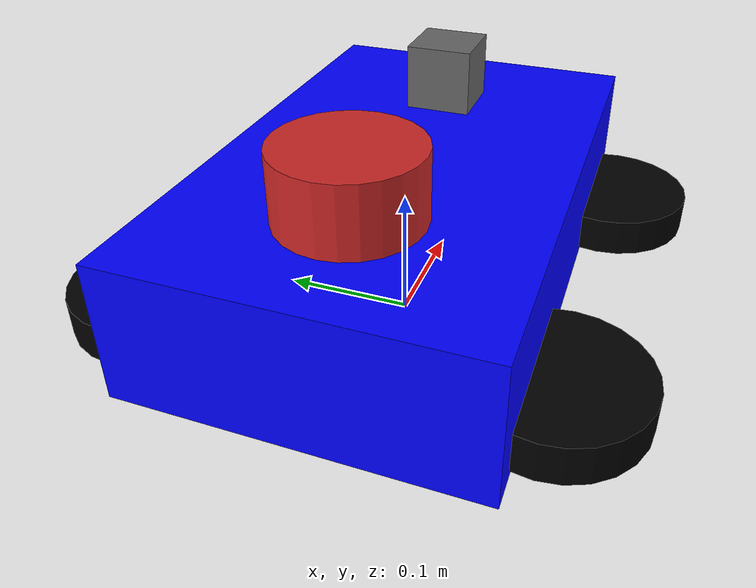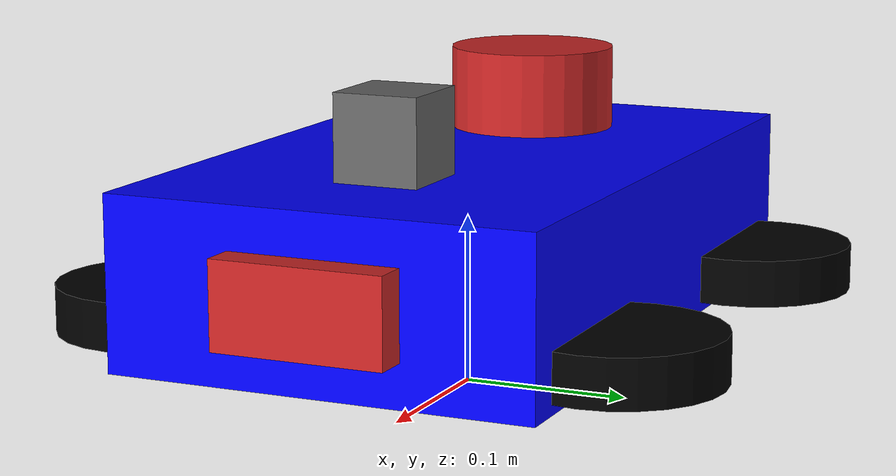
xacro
<?xml version="1.0"?>
<!-- http://wiki.ros.org/urdf/XML/link  -->
<robot xmlns:xacro="http://www.ros.org/wiki/xacro" name="lidar_detection">

    <!-- Define constants -->

    <xacro:property name="base_mass" value="1.0"/>
    <xacro:property name="base_length" value="0.4"/>
    <xacro:property name="base_width" value="0.25"/>
    <xacro:property name="base_height" value="0.1"/>
    <xacro:property name="base_wheel_distance" value="0.02"/>

    <xacro:property name="wheel_mass" value="0.1"/>
    <xacro:property name="wheel_separation" value="${base_width + wheel_length}"/>
    <xacro:property name="wheel_radius" value="0.06"/>
    <xacro:property name="wheel_length" value="0.028"/>

    <xacro:property name="laser_mass" value="0.1"/>
    <xacro:property name="laser_radius" value="0.05"/>
    <xacro:property name="laser_length" value="0.05"/>
    <xacro:property name="laser_distance_z" value="${base_height/2 + laser_length/2}"/>
    <xacro:property name="laser_distance_x" value="-0.1"/>

    <xacro:property name="camera_size_x" value="0.02"/>
    <xacro:property name="camera_size_y" value="0.1"/>
    <xacro:property name="camera_size_z" value="0.05"/>
    <xacro:property name="camera_distance_x" value="${base_length/2 + camera_size_x/2}"/>
    <xacro:property name="camera_distance_y" value="0"/>
    <xacro:property name="camera_distance_z" value="0"/>

    <xacro:property name="imu_size_x" value="0.05"/>
    <xacro:property name="imu_size_y" value="0.05"/>
    <xacro:property name="imu_size_z" value="0.05"/>
    <xacro:property name="imu_distance_x" value="0.1"/>
    <xacro:property name="imu_distance_y" value="0"/>
    <xacro:property name="imu_distance_z" value="${base_height/2 + imu_size_z/2}"/>

    <!-- Include the common gazebo macros -->
    <xacro:include filename="$(find lidar_detection)/urdf/common_gazebo.xacro" />
    <xacro:include filename="$(find lidar_detection)/urdf/inertial_macro.xacro" />

    <!-- This is the base of the robot -->
    <link name="base_footprint"/>

    <!-- This is the body of the robot -->
    <link name="body_link">
        <xacro:inertial_box mass="${base_mass}" x="${base_length}" y="${base_width}" z="${base_height}">
            <origin xyz="0 0 0" rpy="0 0 0"/>
        </xacro:inertial_box>
        <visual>
            <origin rpy="0 0 0" xyz="0 0 0"/>
            <geometry>
                <box size="${base_length} ${base_width} ${base_height}" />
            </geometry>

            <material name="blue">
                <color rgba="0 0 1 1"/>
            </material>
        </visual>
        <collision>
            <origin rpy="0 0 0" xyz="0 0 0"/>
            <geometry>
                <box size="${base_length} ${base_width} ${base_height}" />
            </geometry>
        </collision>
    </link>

    <joint name="base_joint" type="fixed">
        <origin xyz="0.0 0.0 ${base_height/2 - base_wheel_distance + wheel_radius}" rpy="0.0 0.0 0.0"/>
        <parent link="base_footprint"/>
        <child link="body_link"/>
        <axis xyz="0.0 0.0 0.0"/>
        <limit lower="0.0" upper="0.0" effort="0.0" velocity="0.0"/>
    </joint>

    <!-- Define the wheel macro -->
    <xacro:macro name="wheel" params="name x y z">
        <joint name="${name}_joint" type="continuous" >
            <parent link="body_link"/>
            <child  link="${name}_link" />
            <origin xyz="${x} ${y} ${z}" rpy="0 0 0" />
            <axis xyz="0 1 0"/>
        </joint>
        <link name="${name}_link">
            <xacro:inertial_cylinder mass="${wheel_mass}" length="${wheel_length}" radius="${wheel_radius}">
                <origin xyz="0 0 0" rpy="0 0 0"/>
            </xacro:inertial_cylinder>
            <visual>
                <origin rpy="${pi} 0 0" xyz="0 0 0"/>
                <geometry>
                    <cylinder length="${wheel_length}" radius="${wheel_radius}"/>
                </geometry>

                <material name="black">
                    <color rgba="0 0 0 1"/>
                </material>
            </visual>
            <collision>
                <origin rpy="${pi} 0 0" xyz="0 0 0"/>
                <geometry>
                    <cylinder length="${wheel_length}" radius="${wheel_radius}"/>
                </geometry>
            </collision>
        </link>
    </xacro:macro>

    <xacro:wheel name="rear_right" x="${-base_length * 0.3}" y="${-base_width/2 - wheel_length/2}" z="${base_wheel_distance - base_height/2}"/>
    <xacro:wheel name="rear_left"  x="${-base_length * 0.3}" y="${base_width/2 + wheel_length/2}" z="${base_wheel_distance - base_height/2}"/>
    <xacro:wheel name="front_right" x="${base_length * 0.3}" y="${-base_width/2 - wheel_length/2}" z="${base_wheel_distance - base_height/2}"/>
    <xacro:wheel name="front_left" x="${base_length * 0.3}" y="${base_width/2 + wheel_length/2}" z="${base_wheel_distance - base_height/2}"/>

    <!-- Include the skid steering drive plugin -->
    <xacro:include filename="$(find lidar_detection)/urdf/four_wheel_drive_gazebo.xacro" />

    <!-- Include the lidar -->
    <xacro:include filename="$(find lidar_detection)/urdf/lidar2d.xacro" />

    <!-- Include the camera -->
    <xacro:include filename="$(find lidar_detection)/urdf/camera.xacro" />

    <!-- Include the IMU -->
    <xacro:include filename="$(find lidar_detection)/urdf/bno055_imu.xacro" />
    <xacro:add_bno055_imu parent_link="body_link"/>

</robot>

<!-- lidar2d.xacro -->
<robot xmlns:xacro="http://www.ros.org/wiki/xacro" >

    <joint name="lidar_joint" type="fixed">
        <parent link="body_link"/>
        <child link="lidar_link"/>
        <origin xyz="${laser_distance_x} 0 ${laser_distance_z}" rpy="0 0 0"/>
    </joint>

    <link name="lidar_link">
        <visual>
            <geometry>
                <cylinder radius="${laser_radius}" length="${laser_length}"/>
            </geometry>
            <material name="red"/>
        </visual>
        <collision>
            <geometry>
                <cylinder radius="${laser_radius}" length="${laser_length}"/>
            </geometry>
        </collision>
        <xacro:inertial_cylinder mass="${laser_mass}" radius="${laser_radius}" length="${laser_length}">
            <origin xyz="0 0 0" rpy="0 0 0"/>
        </xacro:inertial_cylinder>
    </link>

    <gazebo reference="lidar_link">
        <material>Gazebo/Red</material>

        <sensor name="laser" type="ray">
            <pose> 0 0 0 0 0 0 </pose>
            <visualize>true</visualize>
            <update_rate>10</update_rate>
            <ray>
                <scan>
                    <horizontal>
                        <samples>360</samples>
                        <min_angle>0</min_angle>
                        <max_angle>6.28</max_angle>
                    </horizontal>
                </scan>
                <range>
                    <min>0.22</min>
                    <max>6</max>
                </range>
            </ray>
            <plugin name="laser_controller" filename="libgazebo_ros_ray_sensor.so">
                <ros>
                    <argument>~/out:=scan</argument>
                </ros>
                <output_type>sensor_msgs/LaserScan</output_type>
                <frameName>lidar_link</frameName>
            </plugin>
        </sensor>
    </gazebo>

</robot>

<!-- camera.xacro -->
<robot xmlns:xacro="http://www.ros.org/wiki/xacro">

  <!-- Joint: camera mounted in front of body -->
  <joint name="camera_joint" type="fixed">
    <parent link="body_link"/>
    <child link="camera_link"/>
    <origin xyz="${camera_distance_x} ${camera_distance_y} ${camera_distance_z}" rpy="0 0 0"/> <!-- Adjust position as needed -->
  </joint>

  <!-- Link: camera body -->
  <link name="camera_link">
    <visual>
      <geometry>
        <box size="${camera_size_x} ${camera_size_y} ${camera_size_z}"/>
      </geometry>
      <material name="red"/>
    </visual>
    <collision>
      <geometry>
        <box size="${camera_size_x} ${camera_size_y} ${camera_size_z}"/>
      </geometry>
    </collision>
    <inertial>
      <mass value="0.1"/>
      <origin xyz="0 0 0" rpy="0 0 0"/>
      <inertia ixx="0.0001" ixy="0.0" ixz="0.0"
               iyy="0.0001" iyz="0.0"
               izz="0.0001"/>
    </inertial>
  </link>

  <!-- Gazebo sensor plugin: camera -->
  <gazebo reference="camera_link">
    <sensor name="camera_sensor" type="camera">
      <pose>0 0 0 0 0 0</pose>
      <visualize>true</visualize>
      <update_rate>30</update_rate>
      <camera>
        <horizontal_fov>1.047</horizontal_fov> <!-- ~60 degrees -->
        <image>
          <width>640</width>
          <height>480</height>
          <format>R8G8B8</format>
        </image>
        <clip>
          <near>0.1</near>
          <far>100.0</far>
        </clip>
      </camera>
      <plugin name="camera_controller" filename="libgazebo_ros_camera.so">
        <camera_name>camera</camera_name>
        <image_topic_name>image_raw</image_topic_name>
        <camera_info_topic_name>camera_info</camera_info_topic_name>
        <frame_name>camera_link</frame_name>
      </plugin>
    </sensor>
  </gazebo>

</robot>

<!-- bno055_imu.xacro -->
<robot xmlns:xacro="http://www.ros.org/wiki/xacro">

  <xacro:macro name="add_bno055_imu" params="parent_link">

    <!-- BNO055 IMU Link -->
    <link name="bno055_imu_link">
      <visual>
        <origin xyz="0 0 0" rpy="0 0 0"/>
        <geometry>
          <box size="${imu_size_x} ${imu_size_y} ${imu_size_z}"/>
        </geometry>
        <material name="gray">
          <color rgba="0.4 0.4 0.4 1.0"/>
        </material>
      </visual>
      <collision>
        <origin xyz="0 0 0" rpy="0 0 0"/>
        <geometry>
          <box size="${imu_size_x} ${imu_size_y} ${imu_size_z}"/>
        </geometry>
      </collision>
      <inertial>
        <mass value="0.003"/>
        <origin xyz="0 0 0" rpy="0 0 0"/>
        <inertia ixx="1e-6" ixy="0" ixz="0" iyy="1e-6" iyz="0" izz="1e-6"/>
      </inertial>
    </link>

    <!-- Fixed Joint to Base -->
    <joint name="bno055_imu_joint" type="fixed">
      <parent link="${parent_link}"/>
      <child link="bno055_imu_link"/>
      <origin xyz="${imu_distance_x} ${imu_distance_y} ${imu_distance_z}" rpy="0 0 0"/>
    </joint>

    <!-- Gazebo IMU Sensor -->
    <gazebo reference="bno055_imu_link">
      <sensor name="bno055_imu" type="imu">
        <update_rate>50.0</update_rate>
        <visualize>true</visualize>
        <imu>
          <angular_velocity>
            <x>true</x>
            <y>true</y>
            <z>true</z>
          </angular_velocity>
          <linear_acceleration>
            <x>true</x>
            <y>true</y>
            <z>true</z>
          </linear_acceleration>
        </imu>
        <plugin name="bno055_imu_plugin" filename="libgazebo_ros_imu_sensor.so">
          <ros>
            <remapping>~/out:=imu</remapping>
          </ros>
          <frame_name>bno055_imu_link</frame_name>
        </plugin>
      </sensor>
    </gazebo>

  </xacro:macro>

</robot>
